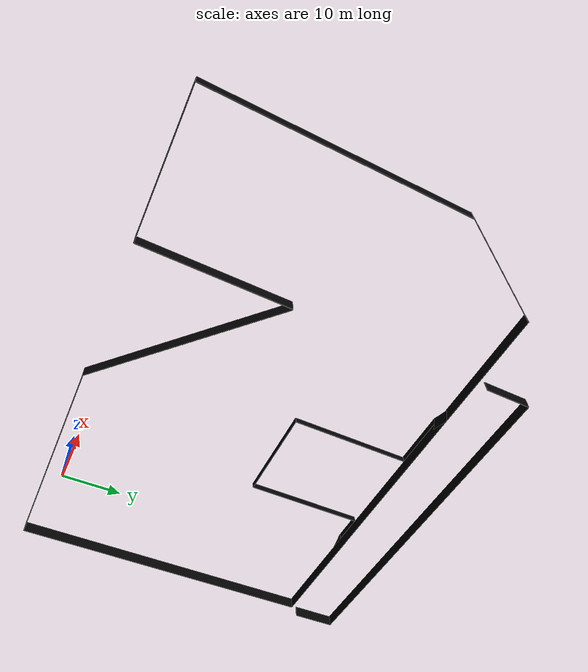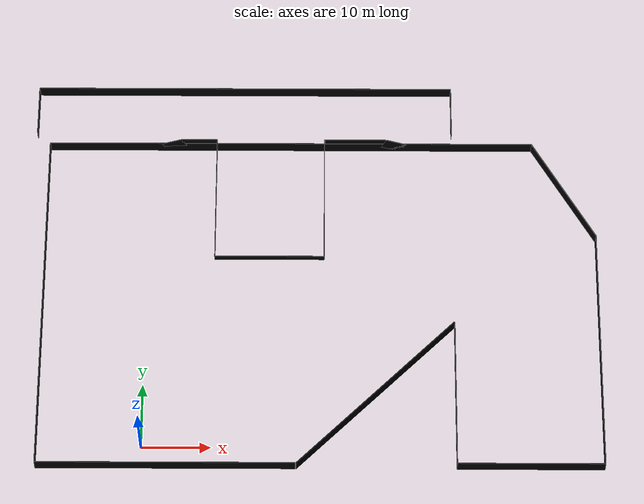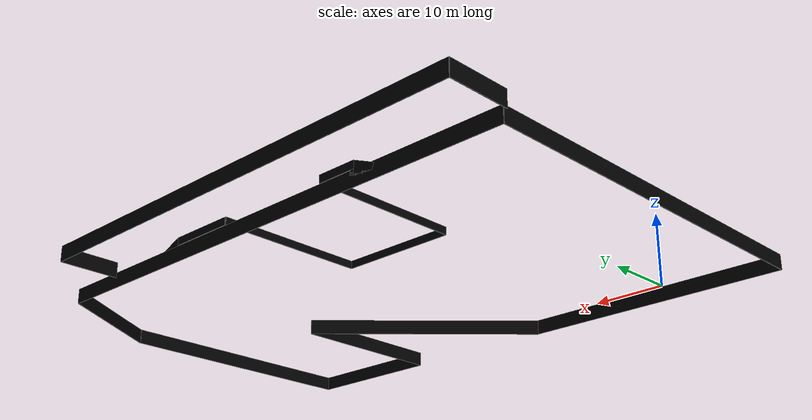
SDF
<?xml version="1.0"?>
<sdf version="1.4">
  <model name="outer_wall">
    <static>true</static>
    <link name="link">
      <collision name="collision">
        <geometry>
          <box>
            <size>1 0.1 3</size>
          </box>
        </geometry>
        <surface>
          <friction>
            <ode>
              <mu>1</mu>
              <mu2>1</mu2>
              <fdir1>0.000000 0.000000 0.000000</fdir1>
              <slip1>0.000000</slip1>
              <slip2>0.000000</slip2>
            </ode>
          </friction>
          <bounce>
            <restitution_coefficient>0.000000</restitution_coefficient>
            <threshold>100000.000000</threshold>
          </bounce>
          <contact>
            <ode>
              <soft_cfm>0.000000</soft_cfm>
              <soft_erp>0.200000</soft_erp>
              <kp>100000.000000</kp>
              <kd>1.000000</kd>
              <max_vel>100.000000</max_vel>
              <min_depth>0.001000</min_depth>
            </ode>
          </contact>
        </surface>
      </collision>
      <visual name="visual_1">
        <pose>-15 23.8 0  0 0 1.5708</pose>
        <cast_shadows>true</cast_shadows>
        <geometry>
          <box>
            <size>53 0.1 2</size>
          </box>
        </geometry>
        <material>
          <ambient>238 156 48 1</ambient>
          <diffuse>0 0 0 1</diffuse>
          <specular>0 0 0 0</specular>
          <emissive>0 0 0 1</emissive>
        </material>
      </visual>
      <visual name="visual_2">
        <pose>3.5 -2.7 0  0 0 0</pose>
        <cast_shadows>true</cast_shadows>
        <geometry>
          <box>
            <size>37 0.1 2</size>
          </box>
        </geometry>
        <material>
          <ambient>238 156 48 1</ambient>
          <diffuse>0 0 0 1</diffuse>
          <specular>0 0 0 0</specular>
          <emissive>0 0 0 1</emissive>
        </material>
      </visual>
      <visual name="visual_3">
        <pose>33.5    8.65 0  0 0 0.785398</pose>
        <cast_shadows>true</cast_shadows>
        <geometry>
          <box>
            <size>32.3155 0.1 2</size>
          </box>
        </geometry>
        <material>
          <ambient>238 156 48 1</ambient>
          <diffuse>0 0 0 1</diffuse>
          <specular>0 0 0 0</specular>
          <emissive>0 0 0 1</emissive>
        </material>
      </visual>
      <visual name="visual_4">
        <pose>45 8.65 0  0 0 1.5708</pose>
        <cast_shadows>true</cast_shadows>
        <geometry>
          <box>
            <size>22.7 0.1 2</size>
          </box>
        </geometry>
        <material>
          <ambient>238 156 48 1</ambient>
          <diffuse>0 0 0 1</diffuse>
          <specular>0 0 0 0</specular>
          <emissive>0 0 0 1</emissive>
        </material>
      </visual>
      <visual name="visual_5">
        <pose>55.5 -2.7 0  0 0 0</pose>
        <cast_shadows>true</cast_shadows>
        <geometry>
          <box>
            <size>21 0.1 2</size>
          </box>
        </geometry>
        <material>
          <ambient>238 156 48 1</ambient>
          <diffuse>0 0 0 1</diffuse>
          <specular>0 0 0 0</specular>
          <emissive>0 0 0 1</emissive>
        </material>
      </visual>
      <visual name="visual_6">
        <pose>66 15.9 0  0 0 1.5708</pose>
        <cast_shadows>true</cast_shadows>
        <geometry>
          <box>
            <size>37.2 0.1 2</size>
          </box>
        </geometry>
        <material>
          <ambient>238 156 48 1</ambient>
          <diffuse>0 0 0 1</diffuse>
          <specular>0 0 0 0</specular>
          <emissive>0 0 0 1</emissive>
        </material>
      </visual>
      <visual name="visual_7">
        <pose>61.5 42.4 0  0 0 2.094399</pose>
        <cast_shadows>true</cast_shadows>
        <geometry>
          <box>
            <size>18.1835 0.1 2</size>
          </box>
        </geometry>
        <material>
          <ambient>238 156 48 1</ambient>
          <diffuse>0 0 0 1</diffuse>
          <specular>0 0 0 0</specular>
          <emissive>0 0 0 1</emissive>
        </material>
      </visual>
      <visual name="visual_8">
        <pose>21 50.3 0  0 0 0</pose>
        <cast_shadows>true</cast_shadows>
        <geometry>
          <box>
            <size>72 0.1 2</size>
          </box>
        </geometry>
        <material>
          <ambient>238 156 48 1</ambient>
          <diffuse>0 0 0 1</diffuse>
          <specular>0 0 0 0</specular>
          <emissive>0 0 0 1</emissive>
        </material>
      </visual>
      <visual name="visual_12">
        <pose>7.375 50.3 1.6  0 0 0</pose>
        <cast_shadows>true</cast_shadows>
        <geometry>
          <box>
            <size>5.25 0.1 1</size>
          </box>
        </geometry>
        <material>
          <ambient>238 156 48 1</ambient>
          <diffuse>0 0 0 1</diffuse>
          <specular>0 0 0 0</specular>
          <emissive>0 0 0 1</emissive>
        </material>
      </visual>
      <visual name="visual_13">
        <pose>30.625 50.3 1.6  0 0 0</pose>
        <cast_shadows>true</cast_shadows>
        <geometry>
          <box>
            <size>9 0.1 1</size>
          </box>
        </geometry>
        <material>
          <ambient>238 156 48 1</ambient>
          <diffuse>0 0 0 1</diffuse>
          <specular>0 0 0 0</specular>
          <emissive>0 0 0 1</emissive>
        </material>
      </visual>
      <visual name="visual_14">
        <pose>36.36 50.3 0.52  0 0.4 0</pose>
        <cast_shadows>true</cast_shadows>
        <geometry>
          <box>
            <size>3.25 0.1 2</size>
          </box>
        </geometry>
        <material>
          <ambient>238 156 48 1</ambient>
          <diffuse>0 0 0 1</diffuse>
          <specular>0 0 0 0</specular>
          <emissive>0 0 0 1</emissive>
        </material>
      </visual>
      <visual name="visual_15">
        <pose>3.64 50.3 0.52  0 -0.4 0</pose>
        <cast_shadows>true</cast_shadows>
        <geometry>
          <box>
            <size>3.25 0.1 2</size>
          </box>
        </geometry>
        <material>
          <ambient>238 156 48 1</ambient>
          <diffuse>0 0 0 1</diffuse>
          <specular>0 0 0 0</specular>
          <emissive>0 0 0 1</emissive>
        </material>
      </visual>
	      <visual name="visual_16">
        <pose>14 60 0  0 0 0</pose>
        <cast_shadows>true</cast_shadows>
        <geometry>
          <box>
            <size>62 0.1 2</size>
          </box>
        </geometry>
        <material>
          <ambient>238 156 48 1</ambient>
          <diffuse>0 0 0 1</diffuse>
          <specular>0 0 0 0</specular>
          <emissive>0 0 0 1</emissive>
        </material>
      </visual>
	<visual name="visual_17">
        <pose>45 56.15 0  0 0 1.5708</pose>
        <cast_shadows>true</cast_shadows>
        <geometry>
          <box>
            <size>7.7 0.1 2</size>
          </box>
        </geometry>
        <material>
          <ambient>238 156 48 1</ambient>
          <diffuse>0 0 0 1</diffuse>
          <specular>0 0 0 0</specular>
          <emissive>0 0 0 1</emissive>
        </material>
      </visual>
	<visual name="visual_18">
        <pose>-17 56.15 0  0 0 1.5708</pose>
        <cast_shadows>true</cast_shadows>
        <geometry>
          <box>
            <size>7.7 0.1 2</size>
          </box>
        </geometry>
        <material>
          <ambient>238 156 48 1</ambient>
          <diffuse>0 0 0 1</diffuse>
          <specular>0 0 0 0</specular>
          <emissive>0 0 0 1</emissive>
        </material>
      </visual>

       <visual name="visual_9">
        <pose>10 40.3 1.6  0 0 1.5708</pose>
        <cast_shadows>true</cast_shadows>
        <geometry>
          <box>
            <size>20 0.1 1</size>
          </box>
        </geometry>
        <material>
          <ambient>238 156 48 1</ambient>
          <diffuse>0 0 0 1</diffuse>
          <specular>0 0 0 0</specular>
          <emissive>0 0 0 1</emissive>
        </material>
      </visual>
      <visual name="visual_10">
        <pose>18 30.3 1.6  0 0 0</pose>
        <cast_shadows>true</cast_shadows>
        <geometry>
          <box>
            <size>16 0.1 1</size>
          </box>
        </geometry>
        <material>
          <ambient>238 156 48 1</ambient>
          <diffuse>0 0 0 1</diffuse>
          <specular>0 0 0 0</specular>
          <emissive>0 0 0 1</emissive>
        </material>
      </visual>
      <visual name="visual_11">
        <pose>26.0 40.3 1.6  0 0 1.5708</pose>
        <cast_shadows>true</cast_shadows>
        <geometry>
          <box>
            <size>20 0.1 1</size>
          </box>
        </geometry>
        <material>
          <ambient>238 156 48 1</ambient>
          <diffuse>0 0 0 1</diffuse>
          <specular>0 0 0 0</specular>
          <emissive>0 0 0 1</emissive>
        </material>
      </visual>

    </link>
  </model>
</sdf>
